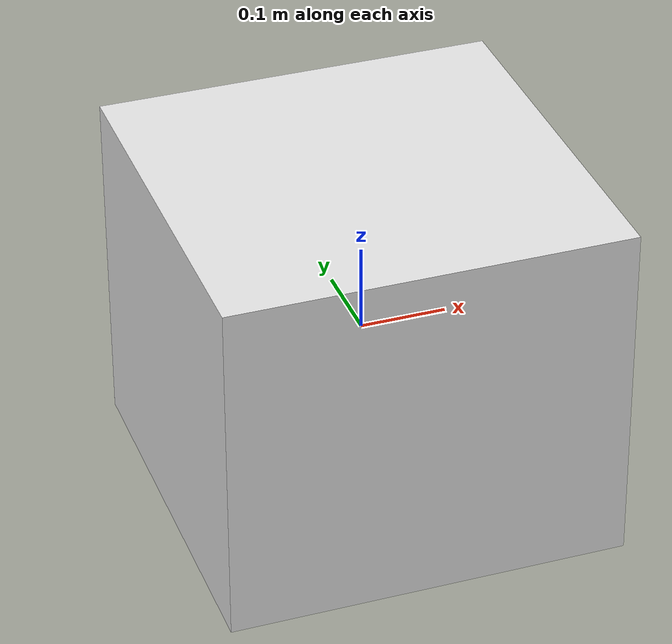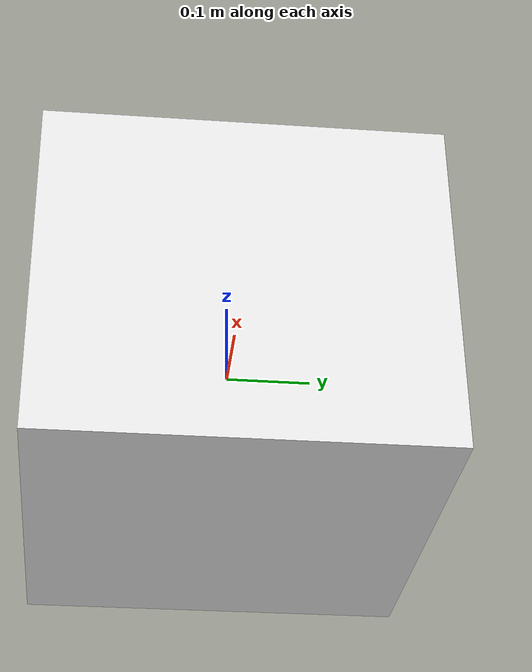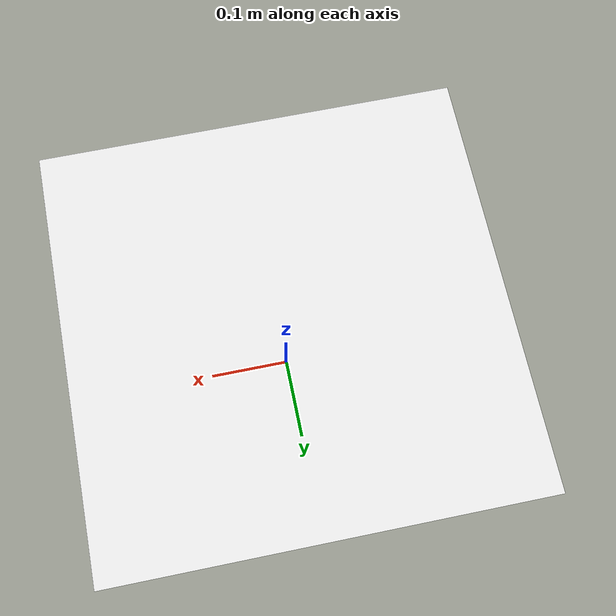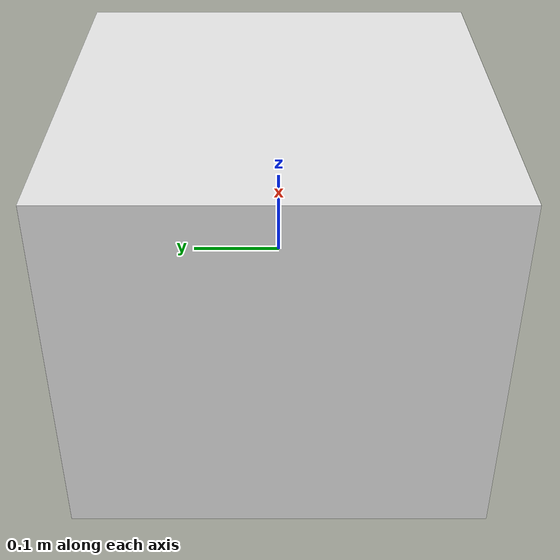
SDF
<?xml version="1.0"?>
<sdf version="1.7">
  <model name="box_uhaul_medium">
    <!-- The model for a solid box of uniform density. -->
    <link name="box">
      <inertial>
        <mass>1.0</mass>
        <inertia>
          <ixx>0.042</ixx>
          <ixy>0</ixy>
          <ixz>0</ixz>
          <iyy>0.042</iyy>
          <iyz>0</iyz>
          <izz>0.042</izz>
        </inertia>
      </inertial>

      <visual name="box_visual">
        <geometry>
          <box>
            <size>0.460 0.457 0.406</size>
          </box>
        </geometry>
        <material>
          <diffuse>0.9 0.9 0.9 0.9</diffuse>
        </material>
      </visual>

      <collision name="collision">
        <geometry>
          <box>
            <size>0.459 0.456 0.405</size>
          </box>
        </geometry>
        <surface>
          <friction>
            <ode>
              <mu>0.5</mu>
              <mu2>0.5</mu2>
            </ode>
          </friction>
        </surface>
      </collision>

      <collision name="minus_x_lower_left_corner">
        <pose> -0.230 -0.228 -0.203 0 0 0</pose>
        <geometry>
          <sphere>
            <radius>1e-7</radius>
          </sphere>
        </geometry>
        <surface>
          <friction>
            <ode>
              <mu>0.1</mu>
              <mu2>0.1</mu2>
            </ode>
          </friction>
        </surface>
      </collision>

      <collision name="minus_x_lower_right_corner">
        <pose> 0.230 -0.228 -0.203 0 0 0</pose>
        <geometry>
          <sphere>
            <radius>1e-7</radius>
          </sphere>
        </geometry>
        <surface>
          <friction>
            <ode>
              <mu>0.1</mu>
              <mu2>0.1</mu2>
            </ode>
          </friction>
        </surface>
      </collision>

      <collision name="plus_x_lower_left_corner">
        <pose> -0.230 0.228 -0.203 0 0 0</pose>
        <geometry>
          <sphere>
            <radius>1e-7</radius>
          </sphere>
        </geometry>
        <surface>
          <friction>
            <ode>
              <mu>0.1</mu>
              <mu2>0.1</mu2>
            </ode>
          </friction>
        </surface>
      </collision>

      <collision name="plus_x_lower_right_corner">
        <pose> 0.230 0.228 -0.203 0 0 0</pose>
        <geometry>
          <sphere>
            <radius>1e-7</radius>
          </sphere>
        </geometry>
        <surface>
          <friction>
            <ode>
              <mu>0.1</mu>
              <mu2>0.1</mu2>
            </ode>
          </friction>
        </surface>
      </collision>

      <collision name="minus_x_upper_left_corner">
        <pose> -0.230 -0.228 0.203 0 0 0</pose>
        <geometry>
          <sphere>
            <radius>1e-7</radius>
          </sphere>
        </geometry>
        <surface>
          <friction>
            <ode>
              <mu>0.1</mu>
              <mu2>0.1</mu2>
            </ode>
          </friction>
        </surface>
      </collision>

      <collision name="minus_x_upper_right_corner">
        <pose> 0.230 -0.228 0.203 0 0 0</pose>
        <geometry>
          <sphere>
            <radius>1e-7</radius>
          </sphere>
        </geometry>
        <surface>
          <friction>
            <ode>
              <mu>0.1</mu>
              <mu2>0.1</mu2>
            </ode>
          </friction>
        </surface>
      </collision>

      <collision name="plus_x_upper_left_corner">
        <pose> -0.230 0.228 0.203 0 0 0</pose>
        <geometry>
          <sphere>
            <radius>1e-7</radius>
          </sphere>
        </geometry>
        <surface>
          <friction>
            <ode>
              <mu>0.1</mu>
              <mu2>0.1</mu2>
            </ode>
          </friction>
        </surface>
      </collision>

      <collision name="plus_x_upper_right_corner">
        <pose>0.230 0.228 0.203 0 0 0</pose>
        <geometry>
          <sphere>
            <radius>1e-7</radius>
          </sphere>
        </geometry>
        <surface>
          <friction>
            <ode>
              <mu>0.1</mu>
              <mu2>0.1</mu2>
            </ode>
          </friction>
        </surface>
      </collision>

    </link>
  </model>
</sdf>
